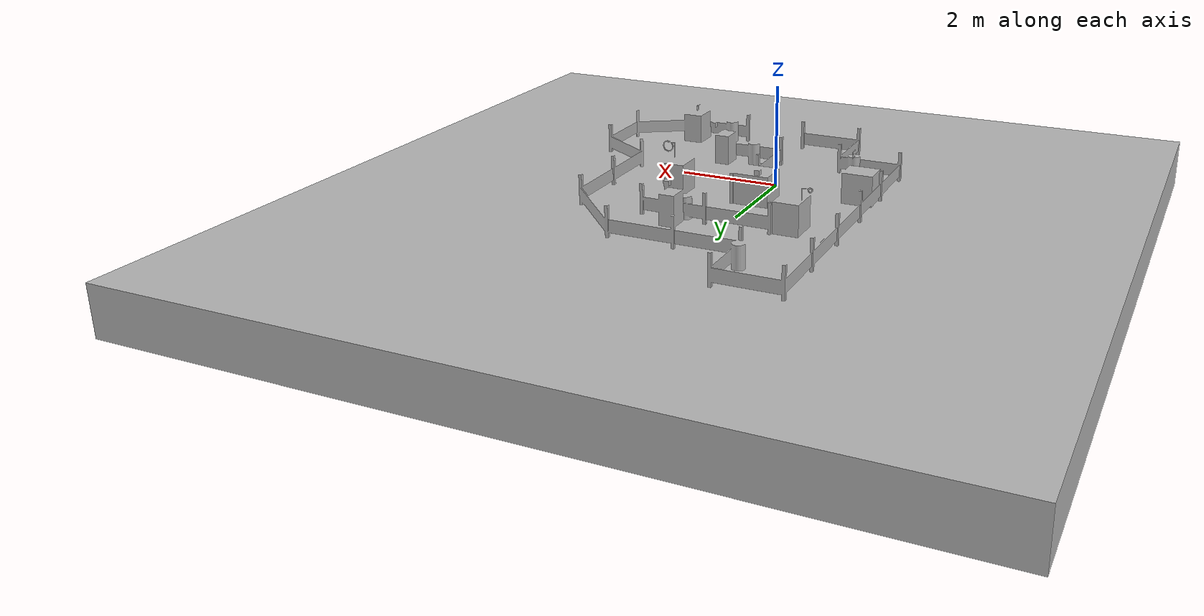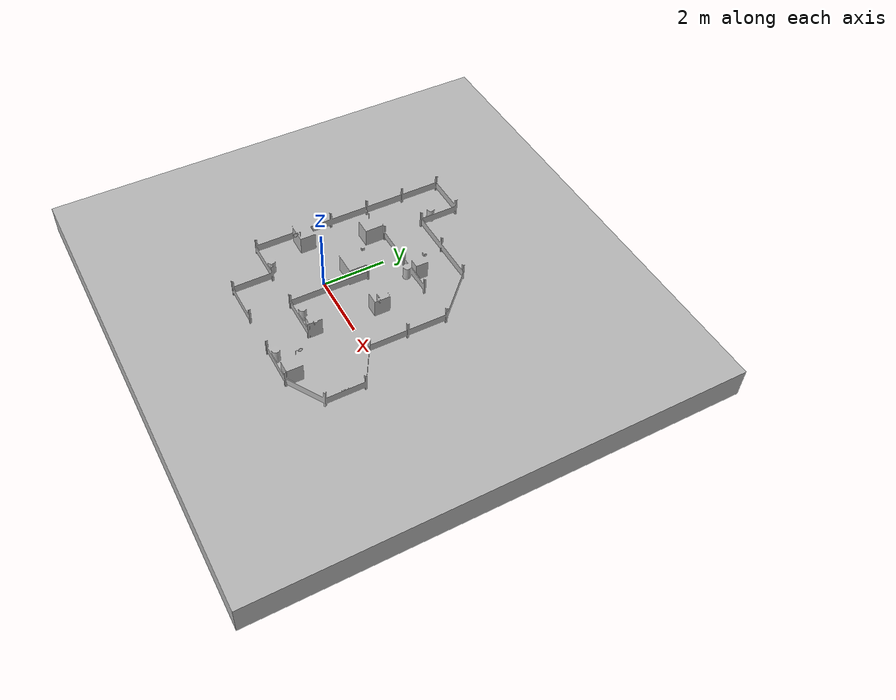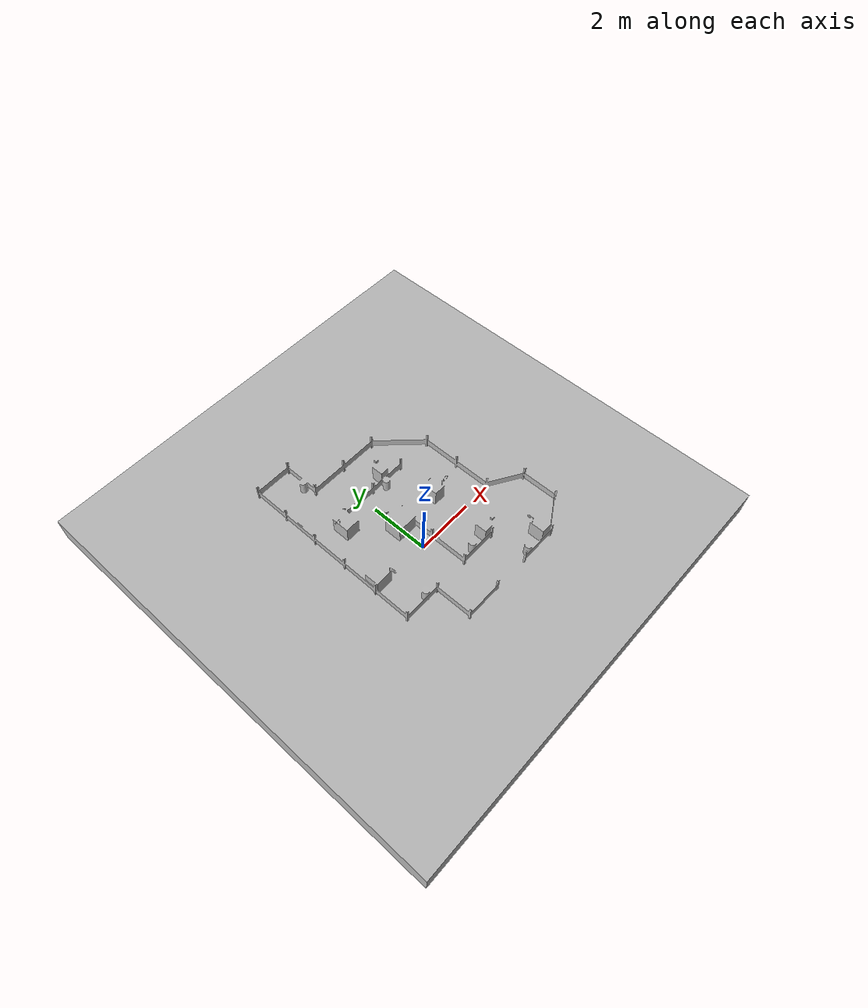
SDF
<?xml version='1.0' encoding='ASCII'?>
<sdf version='1.7'>
  <world name='task1'>
    <physics name='1ms' type='ignored'>
        <max_step_size>0.003</max_step_size>
        <real_time_factor>1</real_time_factor>
        <real_time_update_rate>1000</real_time_update_rate>
    </physics>
    <plugin name='ignition::gazebo::systems::Physics' filename='ignition-gazebo-physics-system' />
    <plugin name='ignition::gazebo::systems::UserCommands' filename='ignition-gazebo-user-commands-system' />
    <plugin name='ignition::gazebo::systems::SceneBroadcaster' filename='ignition-gazebo-scene-broadcaster-system' />
    <plugin name='ignition::gazebo::systems::Contact' filename='ignition-gazebo-contact-system' />

    <light name='sun' type='directional'>
        <cast_shadows>0</cast_shadows>
        <pose>0 0 10 0 -0 0</pose>
        <diffuse>0.9 0.9 0.9 1</diffuse>
        <specular>0.6 0.6 0.6 1</specular>
        <attenuation>
            <range>1000</range>
            <constant>0.90000000000000002</constant>
            <linear>0.01</linear>
            <quadratic>0.001</quadratic>
        </attenuation>
        <direction>-0.5 0.1 -0.9</direction>
        <spot>
            <inner_angle>0</inner_angle>
            <outer_angle>0</outer_angle>
            <falloff>0</falloff>
        </spot>
    </light>
    <gravity>0 0 -9.8</gravity>
    <magnetic_field>6e-06 2.3e-05 -4.2e-05</magnetic_field>
    <atmosphere type='adiabatic' />

    <scene>
      <ambient>1 1 1 1</ambient>
      <background>0.7 0.7 0.7 1</background>
      <sky/>
      <shadows>false</shadows>
      <grid>false</grid>
    </scene>

    <model name='map'>
        <pose>0 0 0 0 0 0</pose>
        <model name='map'>
            <static>true</static>
            <pose>0 0 0 0 0 0</pose>
            <link name='ground_link'>
                <inertial>
                    <mass>1000</mass>
                    <pose>0 0 0 0 0 0</pose>
                    <inertia>
                        <ixx>1</ixx>
                        <ixy>0</ixy>
                        <ixz>0</ixz>
                        <iyy>1</iyy>
                        <iyz>0</iyz>
                        <izz>1</izz>
                    </inertia>
                </inertial>

                <visual name='ground_visual'>
                    <geometry>
                        <mesh>
                            <uri>file://task1_meshes/map.dae</uri>
                        </mesh>
                    </geometry>
                </visual>

        <collision name='ground_collision'>
            <geometry>
                <mesh>
                    <uri>file://task1_meshes/map_colliders.dae</uri>
                </mesh>
            </geometry>
        </collision>

            </link>
        </model>
        <static>true</static>
        <self_collide>false</self_collide>
    </model>

  </world>
</sdf>
